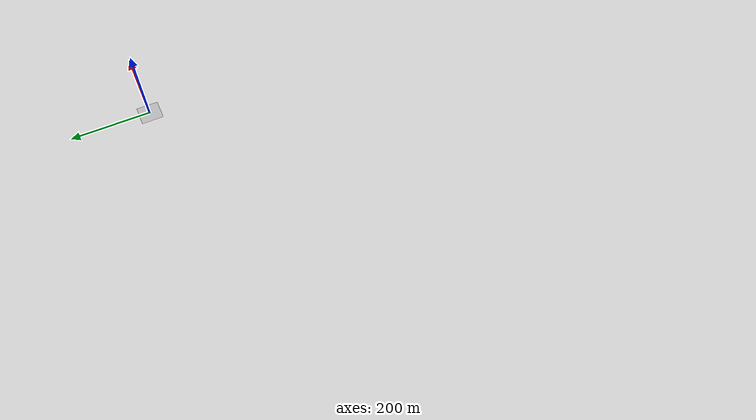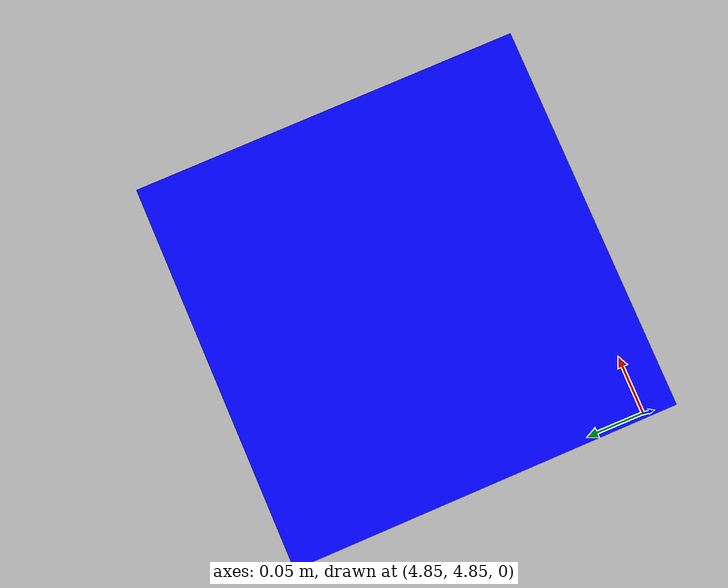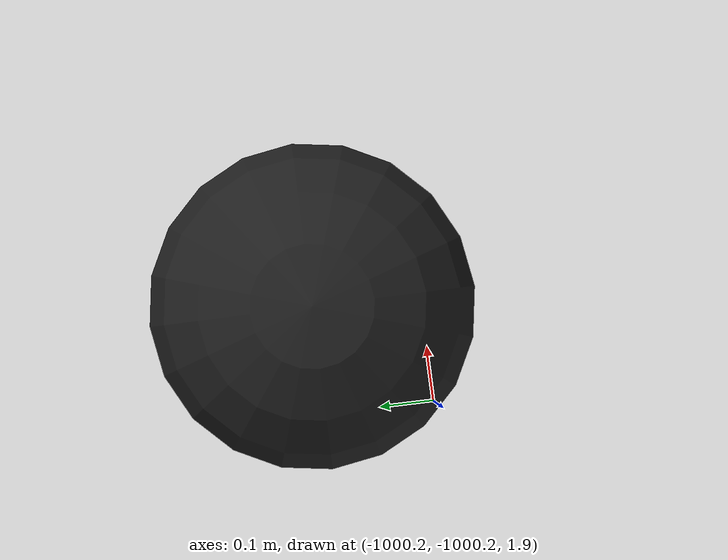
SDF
<?xml version="1.0" ?>
<?xml-model href="http://sdformat.org/schemas/root.xsd" schematypens="http://www.w3.org/2001/XMLSchema"?>
<sdf version="1.5">
  <world name="default">
    <plugin name="mrs_gazebo_static_transform_republisher_plugin" filename="libMRSGazeboStaticTransformRepublisher.so"/>

    <!-- coordinate system {-->
    <spherical_coordinates>
      <surface_model>EARTH_WGS84</surface_model>
      <latitude_deg>47.397743</latitude_deg>
      <longitude_deg>8.545594</longitude_deg>
      <elevation>0.0</elevation>
      <heading_deg>0</heading_deg>
    </spherical_coordinates>

    <!-- physics engine {-->
    <physics name="default_physics" default="0" type="ode">
      <gravity>0 0 -9.8066</gravity>
      <ode>
        <solver>
          <type>quick</type>
          <iters>10</iters>
          <sor>1.3</sor>
          <use_dynamic_moi_rescaling>0</use_dynamic_moi_rescaling>
        </solver>
        <constraints>
          <cfm>0</cfm>
          <erp>0.2</erp>
          <contact_max_correcting_vel>1000</contact_max_correcting_vel>
          <contact_surface_layer>0.001</contact_surface_layer>
        </constraints>
      </ode>
      <max_step_size>0.004</max_step_size>
      <real_time_factor>1</real_time_factor>
      <real_time_update_rate>250</real_time_update_rate>
      <magnetic_field>6.0e-06 2.3e-05 -4.2e-05</magnetic_field>
    </physics>

    <!-- setup shadows {-->
    <scene>
      <shadows>false</shadows>
      <sky>
        <clouds/>
      </sky>
    </scene>

    <!-- sun {-->

    <light name='sun' type='directional'>
      <pose frame=''>0 0 1000 0.4 0.2 0</pose>
      <diffuse>1 1 1 1</diffuse>
      <specular>0.6 0.6 0.6 1</specular>
      <direction>0.1 0.1 -0.9</direction>
      <attenuation>
        <range>20</range>
        <constant>0.5</constant>
        <linear>0.01</linear>
        <quadratic>0.001</quadratic>
      </attenuation>
      <cast_shadows>1</cast_shadows>
    </light>

    <model name="my_model1">
	    <pose>5 5 0 0 0 0</pose>
	    <static>true</static>
	    <link name="link">
	      <inertial>
		<mass>1.0</mass>
		<inertia> <!-- inertias are tricky to compute -->
		  <!-- http://gazebosim.org/tutorials?tut=inertia&cat=build_robot -->
		  <ixx>0.083</ixx>       <!-- for a box: ixx = 0.083 * mass * (y*y + z*z) -->
		  <ixy>0.0</ixy>         <!-- for a box: ixy = 0 -->
		  <ixz>0.0</ixz>         <!-- for a box: ixz = 0 -->
		  <iyy>0.083</iyy>       <!-- for a box: iyy = 0.083 * mass * (x*x + z*z) -->
		  <iyz>0.0</iyz>         <!-- for a box: iyz = 0 -->
		  <izz>0.083</izz>       <!-- for a box: izz = 0.083 * mass * (x*x + y*y) -->
		</inertia>
	      </inertial>
	      <collision name="collision">
		<geometry>
		  <box>
		    <size>0.3 0.3 0.3</size>
		  </box>
		</geometry>
	      </collision>
	      <visual name="visual">
		<geometry>
		  <box>
		    <size>0.3 0.3 0.3</size>
		  </box>
		</geometry>
		<material>
		    <ambient>0 0 1 1</ambient>
		    <diffuse>0 0 1 1</diffuse>
		    <specular>0.1 0.1 0.1 1</specular>
		    <emissive>0 0 0 0</emissive>
		</material>
	      </visual>
	    </link>
    </model>
	<model name="my_model2">
	    <pose>5 3 0 0 0 0</pose>
	    <static>true</static>
	    <link name="link">
	      <inertial>
		<mass>1.0</mass>
		<inertia> <!-- inertias are tricky to compute -->
		  <!-- http://gazebosim.org/tutorials?tut=inertia&cat=build_robot -->
		  <ixx>0.083</ixx>       <!-- for a box: ixx = 0.083 * mass * (y*y + z*z) -->
		  <ixy>0.0</ixy>         <!-- for a box: ixy = 0 -->
		  <ixz>0.0</ixz>         <!-- for a box: ixz = 0 -->
		  <iyy>0.083</iyy>       <!-- for a box: iyy = 0.083 * mass * (x*x + z*z) -->
		  <iyz>0.0</iyz>         <!-- for a box: iyz = 0 -->
		  <izz>0.083</izz>       <!-- for a box: izz = 0.083 * mass * (x*x + y*y) -->
		</inertia>
	      </inertial>
	      <collision name="collision">
		<geometry>
		  <box>
		    <size>0.3 0.3 0.3</size>
		  </box>
		</geometry>
	      </collision>
	      <visual name="visual">
		<geometry>
		  <box>
		    <size>0.3 0.3 0.3</size>
		  </box>
		</geometry>
		<material>
		    <ambient>1 0 0 1</ambient>
		    <diffuse>1 0 0 1</diffuse>
		    <specular>0.1 0.1 0.1 1</specular>
		    <emissive>0 0 0 0</emissive>
		</material>
	      </visual>
	    </link>
    </model>
	 <!-- ground plane {-->
    <model name="ground_plane">
      <static>true</static>
      <link name="link">
        <collision name="collision">
          <pose>0 0 0 0 0 0</pose>
          <geometry>
            <plane>
              <normal>0 0 1</normal>
              <size>250 250</size>
            </plane>
          </geometry>
          <surface>
            <friction>
              <ode>
                <mu>1</mu>
                <mu2>1</mu2>
              </ode>
            </friction>
          </surface>
        </collision>
        <visual name="grass">
          <pose>0 0 0 0 0 0</pose>
          <cast_shadows>false</cast_shadows>
          <geometry>
            <mesh>
              <uri>file://grass_plane/meshes/grass_plane.dae</uri>
            </mesh>
          </geometry>
        </visual>
      </link>
    </model>

    <!-- THE VOID (for spawning objects out of camera view) {-->
    <model name='the_void'>
      <static>1</static>
      <link name='link'>
        <pose frame=''>0 0 0.1 0 -0 0</pose>
        <visual name='the_void'>
          <pose frame=''>0 0 2 0 -0 0</pose>
          <geometry>
            <sphere>
              <radius>0.25</radius>
            </sphere>
          </geometry>
          <material>
            <script>
              <uri>file://media/materials/scripts/Gazebo.material</uri>
              <name>Gazebo/Black</name>
            </script>
          </material>
        </visual>
        <self_collide>0</self_collide>
        <enable_wind>0</enable_wind>
        <kinematic>0</kinematic>
      </link>
      <pose frame=''>-1000 -1000 0 0 0 0</pose>
    </model>

    <!-- user camera {-->
    <gui>
      <camera name="camera">
        <pose>-60 -100 30 0 0.4 0.89</pose>
      </camera>
    </gui>

    <!-- GUI frame synchronization {-->
    <plugin name="mrs_gazebo_rviz_cam_synchronizer" filename="libMRSGazeboRvizCameraSynchronizer.so" >
      <target_frame_id>gazebo_user_camera</target_frame_id>
      <world_origin_frame_id>uav1/gps_origin</world_origin_frame_id>
      <frame_to_follow>uav1</frame_to_follow>
    </plugin>

  </world>
</sdf>
